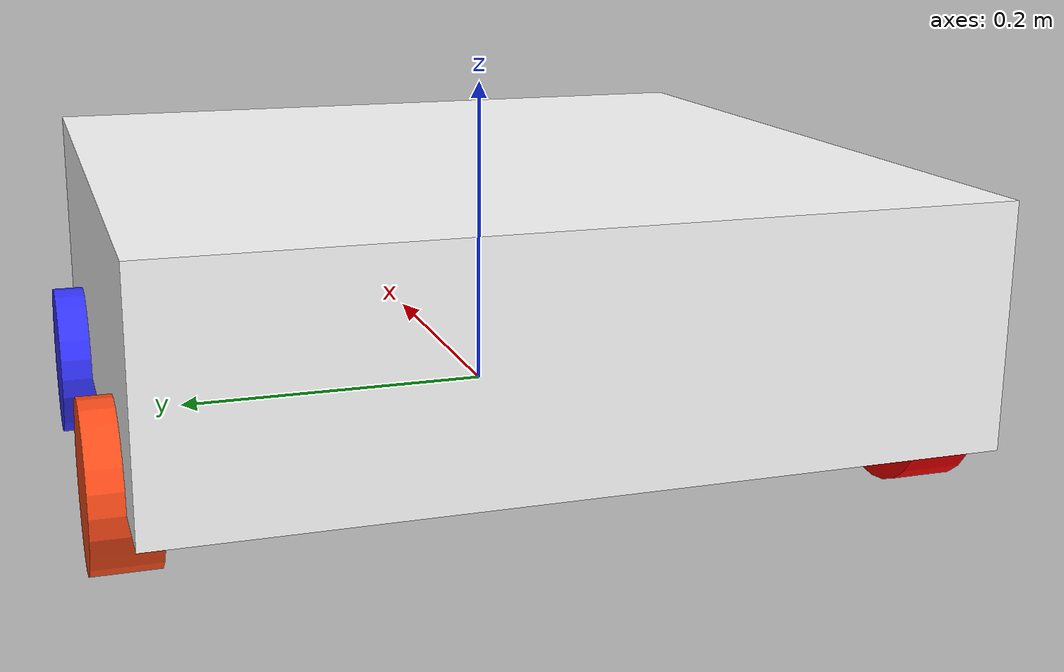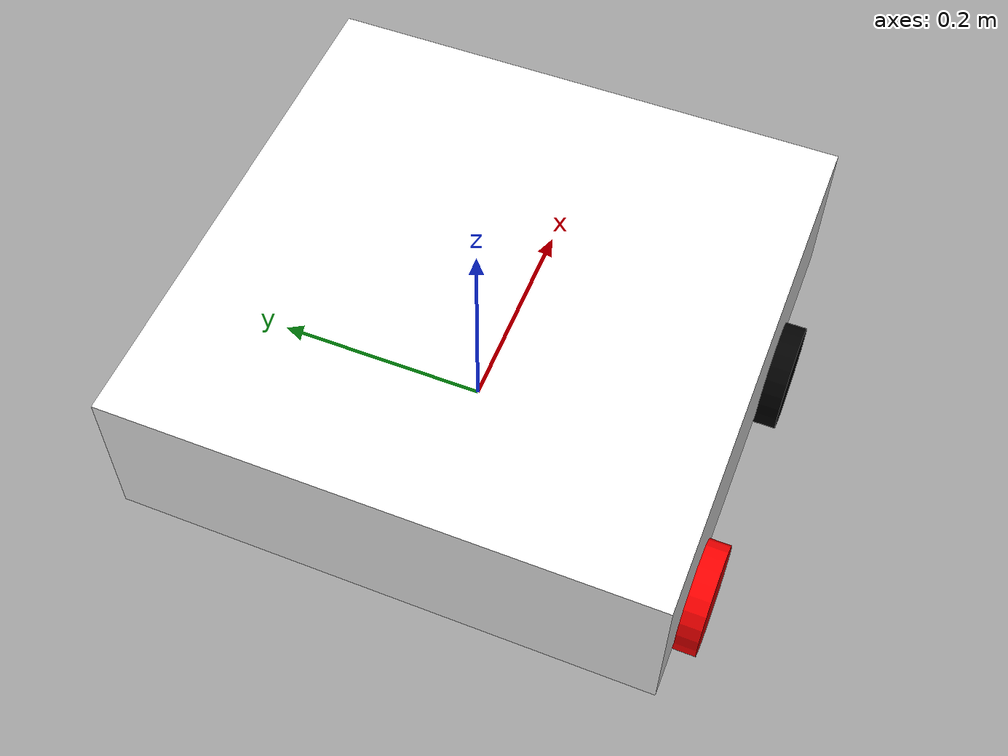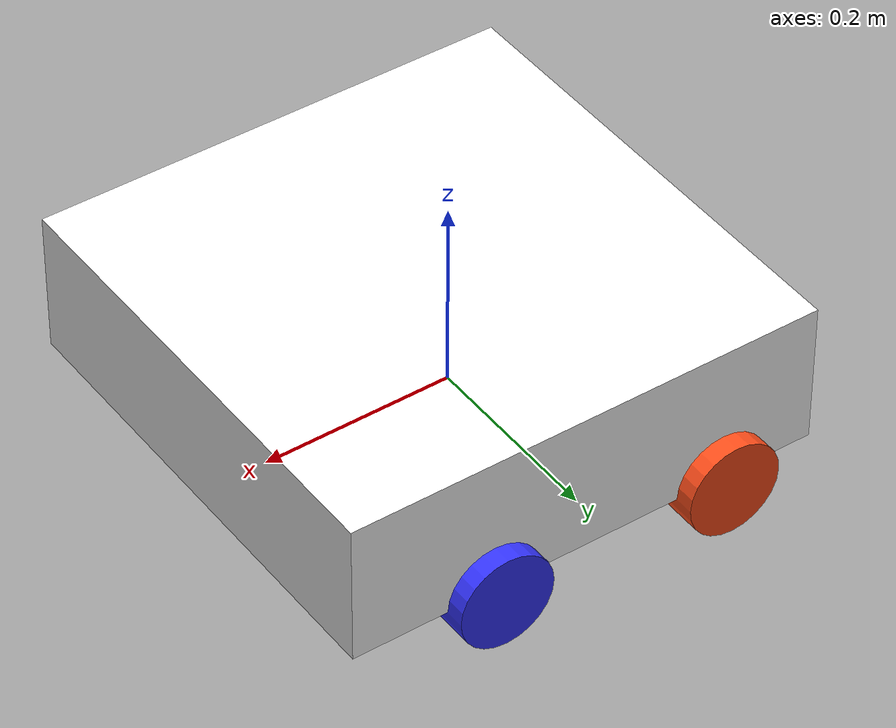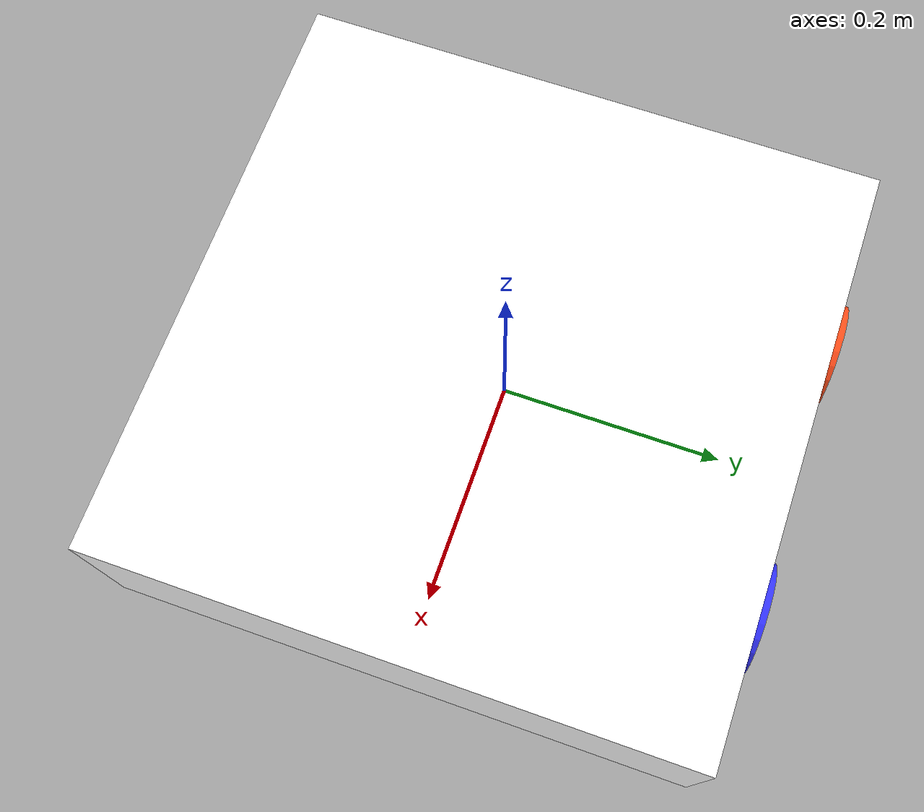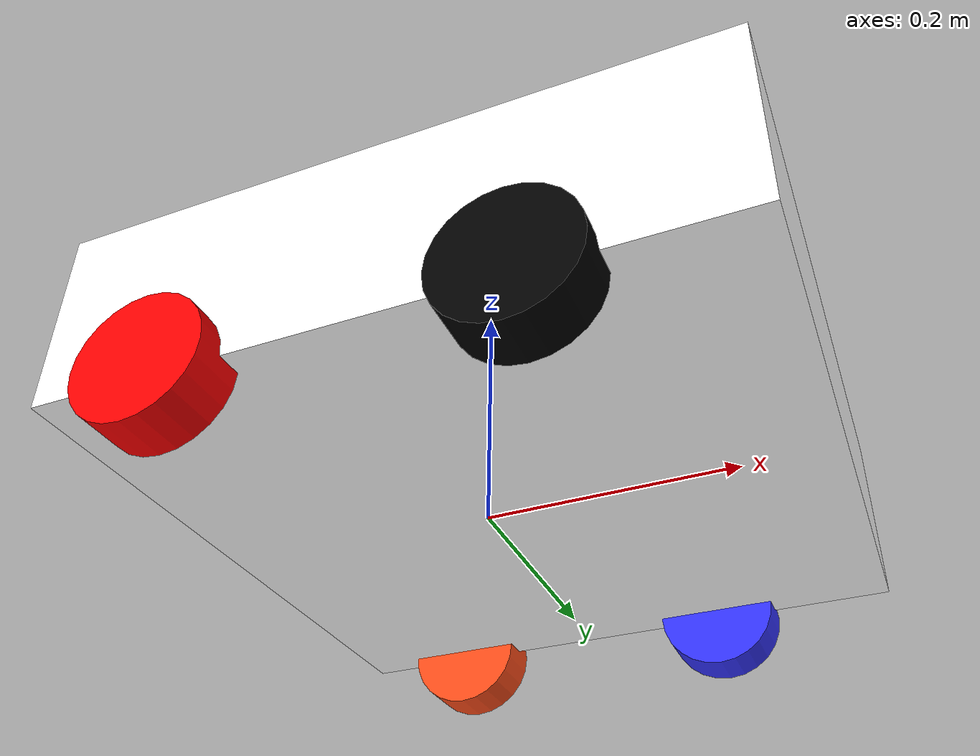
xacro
<?xml version="1.0"?>
<robot xmlns:xacro="http://www.ros.org/wiki/xacro" >
<xacro:include filename="inertial_macros.xacro" />

 <material name="white">
     <color rgba="1 1 1 1" />
 </material>

 <material name="orange">
     <color rgba="1 0.3 0.1 1"/>
 </material>

 <material name="blue">
     <color rgba="0.2 0.2 1 1"/>
 </material>

 <material name="black">
     <color rgba="0 0 0 1"/>
 </material>

 <material name="red">
     <color rgba="1 0 0 1"/>
 </material>

 <!-- BASE LINK -->

 <link name="base_link">

 </link>

 <joint name="chassis_joint" type="fixed">

 <parent link="base_link"/>
 <child link="chassis"/>
 <origin xyz="-0.1 0 0"/>

</joint>

<link name="chassis">
 <visual>
     <origin xyz="0.125 0 0.075" rpy="0 0 0"/>
     <geometry>
         <box size="0.5 0.5 0.15"/>
     </geometry>

     <material name="white"/>
 </visual>

 <collision>
    <origin xyz="0.125 0 0.075" rpy="0 0 0"/>
    <geometry>
        <box size="0.5 0.5 0.15"/>
    </geometry>
</collision>

<xacro:inertial_box mass="0.5" x="0.5" y="0.5" z="0.15">
      <origin xyz="0.125 0 0.075" rpy="0 0 0"/>
  </xacro:inertial_box>

</link>

<gazebo reference="chassis">
   <material>Gazebo/White</material>
</gazebo>

<!-- LEFT WHEEL01 -->

  <joint name="left_wheel_joint01" type="continuous">
    <parent link="base_link"/>
    <child link="left_wheel01"/>
    <origin xyz="0.125 0.25 0" rpy="-${pi/2} 0 0"/>
    <axis xyz="0 0 1"/>
  </joint>

  <link name="left_wheel01">
<visual>
    <geometry>
        <cylinder length="0.04" radius="0.05" />
    </geometry>
    <material name="blue"/>
</visual>

<collision>

    <geometry>
        <cylinder length="0.04" radius="0.05" />
    </geometry>
</collision>

<xacro:inertial_cylinder mass="0.1" length="0.05" radius="0.05">
      <origin xyz="0 0 0" rpy="0 0 0"/>
  </xacro:inertial_cylinder>

</link>

<gazebo reference="left_wheel01">
   <material>Gazebo/Blue</material>
</gazebo>

<!-- LEFT WHEEL02 -->

  <joint name="left_wheel_joint02" type="continuous">
    <parent link="base_link"/>
    <child link="left_wheel02"/>
    <origin xyz="-0.125 0.25 0" rpy="-${pi/2} 0 0"/>
    <axis xyz="0 0 1"/>
  </joint>

  <link name="left_wheel02">
<visual>
    <geometry>
        <cylinder length="0.04" radius="0.05" />
    </geometry>
    <material name="orange"/>
</visual>

<collision>

    <geometry>
        <cylinder length="0.04" radius="0.05" />
    </geometry>
</collision>

<xacro:inertial_cylinder mass="0.1" length="0.05" radius="0.05">
      <origin xyz="0 0 0" rpy="0 0 0"/>
  </xacro:inertial_cylinder>

</link>

<gazebo reference="left_wheel02">
   <material>Gazebo/Orange</material>
</gazebo>

<!-- RIGHT WHEEL01 -->

<joint name="right_wheel_joint01" type="continuous">
<parent link="base_link"/>
<child link="right_wheel01"/>
<origin xyz="0.125 -0.25 0" rpy="${pi/2} 0 0"/>
<axis xyz="0 0 -1"/>
</joint>

<link name="right_wheel01">
<visual>
    <geometry>
        <cylinder length="0.04" radius="0.05" />
    </geometry>
    <material name="black"/>
</visual>

<collision>

    <geometry>
        <cylinder length="0.04" radius="0.05" />
    </geometry>
</collision>

<xacro:inertial_cylinder mass="0.1" length="0.05" radius="0.05">
      <origin xyz="0 0 0" rpy="0 0 0"/>
  </xacro:inertial_cylinder>
</link>

 <gazebo reference="right_wheel01">
   <material>Gazebo/Black</material>
</gazebo>

<!-- RIGHT WHEEL02 -->

<joint name="right_wheel_joint02" type="continuous">
<parent link="base_link"/>
<child link="right_wheel02"/>
<origin xyz="-0.125 -0.25 0" rpy="${pi/2} 0 0"/>
<axis xyz="0 0 -1"/>
</joint>

<link name="right_wheel02">
<visual>
    <geometry>
        <cylinder length="0.04" radius="0.05" />
    </geometry>
    <material name="red"/>
</visual>

<collision>
    <geometry>
        <cylinder length="0.04" radius="0.05" />
    </geometry>
</collision>

<xacro:inertial_cylinder mass="0.1" length="0.05" radius="0.05">
      <origin xyz="0 0 0" rpy="0 0 0"/>
  </xacro:inertial_cylinder>
</link>

<gazebo reference="right_wheel02">
   <material>Gazebo/Red</material>
</gazebo>

</robot>
